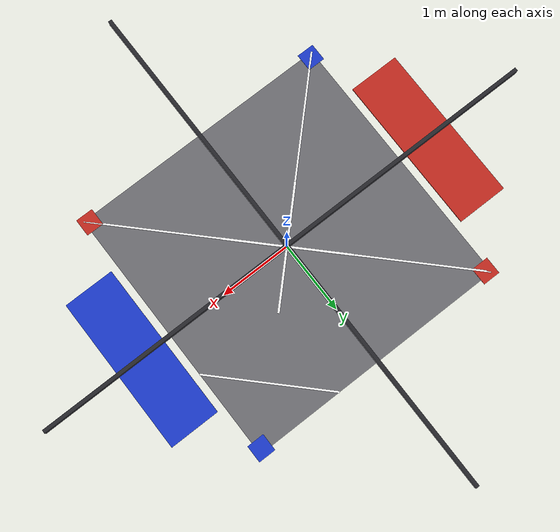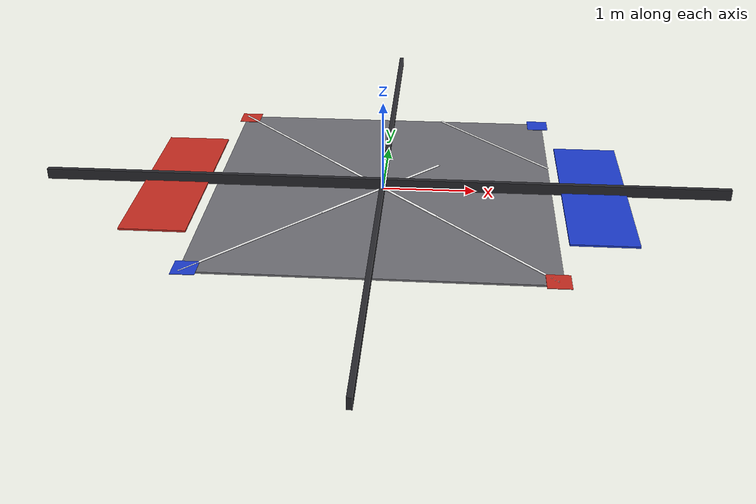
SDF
<?xml version="1.0" ?>
<sdf version="1.7">
  <model name="override-field">
    <static>true</static>
    <link name="body">
      <pose>0 0 0 0 0 0</pose>
            <visual name="v_0_0">
        <pose>0 0 -0.01 0.0 0.0 0.0</pose>
        <geometry><box><size>3.6576 3.6576 0.02</size></box></geometry>
        <material>
        <ambient>0.42 0.42 0.44 1</ambient>
        <diffuse>0.42 0.42 0.44 1</diffuse>
        <specular>0.1 0.1 0.1 1.0</specular>
        <emissive>0 0 0 1</emissive>
      </material>
      </visual>
      <collision name="c_0_0">
        <pose>0 0 -0.01 0.0 0.0 0.0</pose>
        <geometry><box><size>3.6576 3.6576 0.02</size></box></geometry>
        <surface><friction><ode><mu>0.8</mu><mu2>0.8</mu2></ode></friction></surface>
      </collision>

      <visual name="v_-1.8538_0">
        <pose>-1.8538 0 0.06 0.0 0.0 0.0</pose>
        <geometry><box><size>3.7576 0.05 0.12</size></box></geometry>
        <material>
        <ambient>0.15 0.15 0.17 1</ambient>
        <diffuse>0.15 0.15 0.17 1</diffuse>
        <specular>0.1 0.1 0.1 1.0</specular>
        <emissive>0 0 0 1</emissive>
      </material>
      </visual>
      <collision name="c_-1.8538_0">
        <pose>-1.8538 0 0.06 0.0 0.0 0.0</pose>
        <geometry><box><size>3.7576 0.05 0.12</size></box></geometry>
        <surface><friction><ode><mu>0.8</mu><mu2>0.8</mu2></ode></friction></surface>
      </collision>

      <visual name="v_0_-1.8538">
        <pose>0 -1.8538 0.06 0.0 0.0 0.0</pose>
        <geometry><box><size>0.05 3.7576 0.12</size></box></geometry>
        <material>
        <ambient>0.15 0.15 0.17 1</ambient>
        <diffuse>0.15 0.15 0.17 1</diffuse>
        <specular>0.1 0.1 0.1 1.0</specular>
        <emissive>0 0 0 1</emissive>
      </material>
      </visual>
      <collision name="c_0_-1.8538">
        <pose>0 -1.8538 0.06 0.0 0.0 0.0</pose>
        <geometry><box><size>0.05 3.7576 0.12</size></box></geometry>
        <surface><friction><ode><mu>0.8</mu><mu2>0.8</mu2></ode></friction></surface>
      </collision>

      <visual name="v_1.8538_0">
        <pose>1.8538 0 0.06 0.0 0.0 0.0</pose>
        <geometry><box><size>3.7576 0.05 0.12</size></box></geometry>
        <material>
        <ambient>0.15 0.15 0.17 1</ambient>
        <diffuse>0.15 0.15 0.17 1</diffuse>
        <specular>0.1 0.1 0.1 1.0</specular>
        <emissive>0 0 0 1</emissive>
      </material>
      </visual>
      <collision name="c_1.8538_0">
        <pose>1.8538 0 0.06 0.0 0.0 0.0</pose>
        <geometry><box><size>3.7576 0.05 0.12</size></box></geometry>
        <surface><friction><ode><mu>0.8</mu><mu2>0.8</mu2></ode></friction></surface>
      </collision>

      <visual name="v_0_1.8538">
        <pose>0 1.8538 0.06 0.0 0.0 0.0</pose>
        <geometry><box><size>0.05 3.7576 0.12</size></box></geometry>
        <material>
        <ambient>0.15 0.15 0.17 1</ambient>
        <diffuse>0.15 0.15 0.17 1</diffuse>
        <specular>0.1 0.1 0.1 1.0</specular>
        <emissive>0 0 0 1</emissive>
      </material>
      </visual>
      <collision name="c_0_1.8538">
        <pose>0 1.8538 0.06 0.0 0.0 0.0</pose>
        <geometry><box><size>0.05 3.7576 0.12</size></box></geometry>
        <surface><friction><ode><mu>0.8</mu><mu2>0.8</mu2></ode></friction></surface>
      </collision>

      <visual name="v_-2.2788_0">
        <pose>-2.2788 0 0.01 0.0 0.0 0.0</pose>
        <geometry><box><size>0.7 2.2 0.02</size></box></geometry>
        <material>
        <ambient>0.75 0.16 0.12 1</ambient>
        <diffuse>0.75 0.16 0.12 1</diffuse>
        <specular>0.1 0.1 0.1 1.0</specular>
        <emissive>0 0 0 1</emissive>
      </material>
      </visual>
      <collision name="c_-2.2788_0">
        <pose>-2.2788 0 0.01 0.0 0.0 0.0</pose>
        <geometry><box><size>0.7 2.2 0.02</size></box></geometry>
        <surface><friction><ode><mu>0.8</mu><mu2>0.8</mu2></ode></friction></surface>
      </collision>

      <visual name="v_2.2788_0">
        <pose>2.2788 0 0.01 0.0 0.0 0.0</pose>
        <geometry><box><size>0.7 2.2 0.02</size></box></geometry>
        <material>
        <ambient>0.1 0.22 0.78 1</ambient>
        <diffuse>0.1 0.22 0.78 1</diffuse>
        <specular>0.1 0.1 0.1 1.0</specular>
        <emissive>0 0 0 1</emissive>
      </material>
      </visual>
      <collision name="c_2.2788_0">
        <pose>2.2788 0 0.01 0.0 0.0 0.0</pose>
        <geometry><box><size>0.7 2.2 0.02</size></box></geometry>
        <surface><friction><ode><mu>0.8</mu><mu2>0.8</mu2></ode></friction></surface>
      </collision>

      <visual name="tape_0.3_0.3">
        <pose>0.3 0.3 0.005 0 0 0.7854</pose>
        <geometry><box><size>0.848528137423857 0.03 0.005</size></box></geometry>
        <material>
        <ambient>0.96 0.96 0.96 1</ambient>
        <diffuse>0.96 0.96 0.96 1</diffuse>
        <specular>0.1 0.1 0.1 1.0</specular>
        <emissive>0.05 0.05 0.05 1</emissive>
      </material>
      </visual>

      <visual name="tape_-0.3_0.3">
        <pose>-0.3 0.3 0.005 0 0 -0.7854</pose>
        <geometry><box><size>0.848528137423857 0.03 0.005</size></box></geometry>
        <material>
        <ambient>0.96 0.96 0.96 1</ambient>
        <diffuse>0.96 0.96 0.96 1</diffuse>
        <specular>0.1 0.1 0.1 1.0</specular>
        <emissive>0.05 0.05 0.05 1</emissive>
      </material>
      </visual>

      <visual name="tape_-0.3_-0.3">
        <pose>-0.3 -0.3 0.005 0 0 0.7854</pose>
        <geometry><box><size>0.848528137423857 0.03 0.005</size></box></geometry>
        <material>
        <ambient>0.96 0.96 0.96 1</ambient>
        <diffuse>0.96 0.96 0.96 1</diffuse>
        <specular>0.1 0.1 0.1 1.0</specular>
        <emissive>0.05 0.05 0.05 1</emissive>
      </material>
      </visual>

      <visual name="tape_0.3_-0.3">
        <pose>0.3 -0.3 0.005 0 0 -0.7854</pose>
        <geometry><box><size>0.848528137423857 0.03 0.005</size></box></geometry>
        <material>
        <ambient>0.96 0.96 0.96 1</ambient>
        <diffuse>0.96 0.96 0.96 1</diffuse>
        <specular>0.1 0.1 0.1 1.0</specular>
        <emissive>0.05 0.05 0.05 1</emissive>
      </material>
      </visual>

      <visual name="tape_-1.2144_1.2144">
        <pose>-1.2144 1.2144 0.005 0 0 -0.7854</pose>
        <geometry><box><size>1.7377856254440596 0.025 0.005</size></box></geometry>
        <material>
        <ambient>0.96 0.96 0.96 1</ambient>
        <diffuse>0.96 0.96 0.96 1</diffuse>
        <specular>0.1 0.1 0.1 1.0</specular>
        <emissive>0.05 0.05 0.05 1</emissive>
      </material>
      </visual>

      <visual name="tape_1.2144_1.2144">
        <pose>1.2144 1.2144 0.005 0 0 2.3562</pose>
        <geometry><box><size>1.7377856254440596 0.025 0.005</size></box></geometry>
        <material>
        <ambient>0.96 0.96 0.96 1</ambient>
        <diffuse>0.96 0.96 0.96 1</diffuse>
        <specular>0.1 0.1 0.1 1.0</specular>
        <emissive>0.05 0.05 0.05 1</emissive>
      </material>
      </visual>

      <visual name="tape_-1.2144_-1.2144">
        <pose>-1.2144 -1.2144 0.005 0 0 0.7854</pose>
        <geometry><box><size>1.7377856254440596 0.025 0.005</size></box></geometry>
        <material>
        <ambient>0.96 0.96 0.96 1</ambient>
        <diffuse>0.96 0.96 0.96 1</diffuse>
        <specular>0.1 0.1 0.1 1.0</specular>
        <emissive>0.05 0.05 0.05 1</emissive>
      </material>
      </visual>

      <visual name="tape_1.2144_-1.2144">
        <pose>1.2144 -1.2144 0.005 0 0 2.3562</pose>
        <geometry><box><size>1.7377856254440596 0.025 0.005</size></box></geometry>
        <material>
        <ambient>0.96 0.96 0.96 1</ambient>
        <diffuse>0.96 0.96 0.96 1</diffuse>
        <specular>0.1 0.1 0.1 1.0</specular>
        <emissive>0.05 0.05 0.05 1</emissive>
      </material>
      </visual>

      <visual name="tape_1.773936_1.773936">
        <pose>1.773936 1.773936 0.005 0 0 0.0</pose>
        <geometry><box><size>0.24 0.24 0.005</size></box></geometry>
        <material>
        <ambient>0.1 0.22 0.78 1</ambient>
        <diffuse>0.1 0.22 0.78 1</diffuse>
        <specular>0.1 0.1 0.1 1.0</specular>
        <emissive>0 0 0 1</emissive>
      </material>
      </visual>

      <visual name="tape_1.773936_-1.773936">
        <pose>1.773936 -1.773936 0.005 0 0 0.0</pose>
        <geometry><box><size>0.24 0.24 0.005</size></box></geometry>
        <material>
        <ambient>0.75 0.16 0.12 1</ambient>
        <diffuse>0.75 0.16 0.12 1</diffuse>
        <specular>0.1 0.1 0.1 1.0</specular>
        <emissive>0 0 0 1</emissive>
      </material>
      </visual>

      <visual name="tape_-1.773936_-1.773936">
        <pose>-1.773936 -1.773936 0.005 0 0 0.0</pose>
        <geometry><box><size>0.24 0.24 0.005</size></box></geometry>
        <material>
        <ambient>0.1 0.22 0.78 1</ambient>
        <diffuse>0.1 0.22 0.78 1</diffuse>
        <specular>0.1 0.1 0.1 1.0</specular>
        <emissive>0 0 0 1</emissive>
      </material>
      </visual>

      <visual name="tape_-1.773936_1.773936">
        <pose>-1.773936 1.773936 0.005 0 0 0.0</pose>
        <geometry><box><size>0.24 0.24 0.005</size></box></geometry>
        <material>
        <ambient>0.75 0.16 0.12 1</ambient>
        <diffuse>0.75 0.16 0.12 1</diffuse>
        <specular>0.1 0.1 0.1 1.0</specular>
        <emissive>0 0 0 1</emissive>
      </material>
      </visual>

    </link>
  </model>
</sdf>
